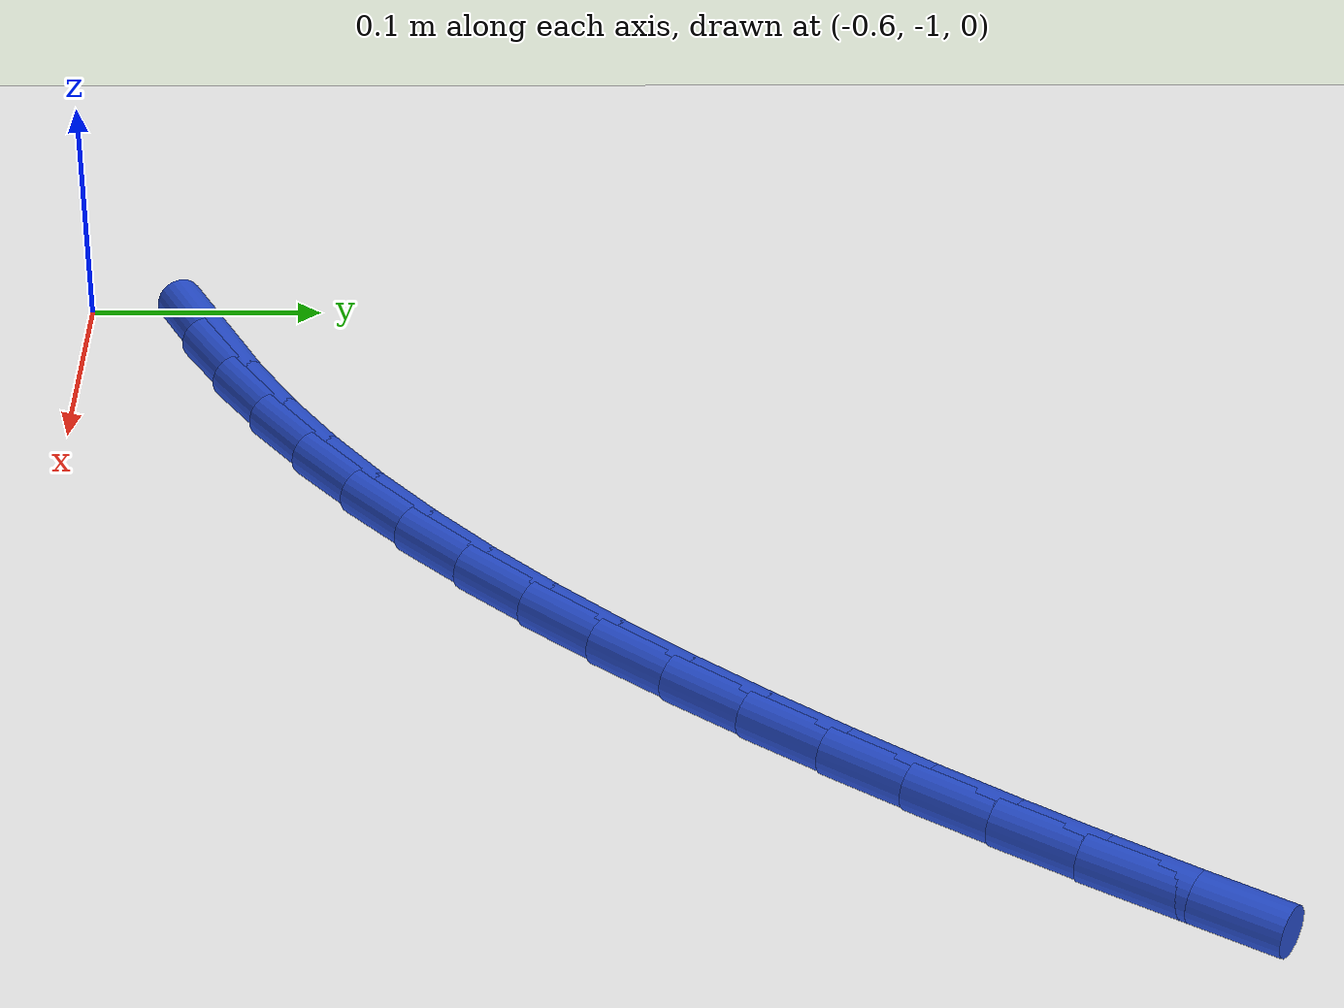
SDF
<sdf version="1.6">
 <world name="default">
  <model name="ground_plane">
   <static>1</static>
   <link name="link">
    <collision name="collision">
     <geometry><plane><normal>0 0 1</normal><size>100 100</size></plane></geometry>
     <surface><friction><ode><mu>100</mu><mu2>50</mu2></ode></friction></surface>
    </collision>
    <visual name="visual">
     <cast_shadows>0</cast_shadows>
     <geometry><plane><normal>0 0 1</normal><size>100 100</size></plane></geometry>
     <material>
      <script><uri>file://media/materials/scripts/gazebo.material</uri><name>Gazebo/WhiteGlow</name></script>
     </material>
    </visual>
   </link>
  </model>
  <model name="line">
   <link name="link_158">
    <pose>-0.558548146287911 -0.9432031679114411 0.01 0 1.57 0.45713544437583525</pose>
    <collision name="collision">
     <geometry><cylinder><radius>0.01</radius><length>0.08</length></cylinder></geometry>
    </collision>
    <visual name="visual">
     <material>
      <script><name>Gazebo/Blue</name><uri>file://media/materials/scripts/gazebo.material</uri></script>
     </material>
     <geometry><cylinder><radius>0.01</radius><length>0.08</length></cylinder></geometry>
    </visual>
   </link>
   <link name="link_159">
    <pose>-0.5271845417817222 -0.9277758468387778 0.01 0 1.57 0.5205325935558743</pose>
    <collision name="collision">
     <geometry><cylinder><radius>0.01</radius><length>0.08</length></cylinder></geometry>
    </collision>
    <visual name="visual">
     <material>
      <script><name>Gazebo/Blue</name><uri>file://media/materials/scripts/gazebo.material</uri></script>
     </material>
     <geometry><cylinder><radius>0.01</radius><length>0.08</length></cylinder></geometry>
    </visual>
   </link>
   <link name="link_160">
    <pose>-0.49684931563408613 -0.910385594855489 0.01 0 1.57 0.5807648153576838</pose>
    <collision name="collision">
     <geometry><cylinder><radius>0.01</radius><length>0.08</length></cylinder></geometry>
    </collision>
    <visual name="visual">
     <material>
      <script><name>Gazebo/Blue</name><uri>file://media/materials/scripts/gazebo.material</uri></script>
     </material>
     <geometry><cylinder><radius>0.01</radius><length>0.08</length></cylinder></geometry>
    </visual>
   </link>
   <link name="link_161">
    <pose>-0.4675215333265776 -0.8911388826727018 0.01 0 1.57 0.6363831360634495</pose>
    <collision name="collision">
     <geometry><cylinder><radius>0.01</radius><length>0.08</length></cylinder></geometry>
    </collision>
    <visual name="visual">
     <material>
      <script><name>Gazebo/Blue</name><uri>file://media/materials/scripts/gazebo.material</uri></script>
     </material>
     <geometry><cylinder><radius>0.01</radius><length>0.08</length></cylinder></geometry>
    </visual>
   </link>
   <link name="link_162">
    <pose>-0.4391634262908447 -0.870184026995264 0.01 0 1.57 0.687366770671507</pose>
    <collision name="collision">
     <geometry><cylinder><radius>0.01</radius><length>0.08</length></cylinder></geometry>
    </collision>
    <visual name="visual">
     <material>
      <script><name>Gazebo/Blue</name><uri>file://media/materials/scripts/gazebo.material</uri></script>
     </material>
     <geometry><cylinder><radius>0.01</radius><length>0.08</length></cylinder></geometry>
    </visual>
   </link>
   <link name="link_163">
    <pose>-0.41173722595853524 -0.8476693445280236 0.01 0 1.57 0.7337999334420165</pose>
    <collision name="collision">
     <geometry><cylinder><radius>0.01</radius><length>0.08</length></cylinder></geometry>
    </collision>
    <visual name="visual">
     <material>
      <script><name>Gazebo/Blue</name><uri>file://media/materials/scripts/gazebo.material</uri></script>
     </material>
     <geometry><cylinder><radius>0.01</radius><length>0.08</length></cylinder></geometry>
    </visual>
   </link>
   <link name="link_164">
    <pose>-0.38520516376129693 -0.8237431519758284 0.01 0 1.57 0.7758377361763357</pose>
    <collision name="collision">
     <geometry><cylinder><radius>0.01</radius><length>0.08</length></cylinder></geometry>
    </collision>
    <visual name="visual">
     <material>
      <script><name>Gazebo/Blue</name><uri>file://media/materials/scripts/gazebo.material</uri></script>
     </material>
     <geometry><cylinder><radius>0.01</radius><length>0.08</length></cylinder></geometry>
    </visual>
   </link>
   <link name="link_165">
    <pose>-0.3595294711307776 -0.7985537660435261 0.01 0 1.57 0.8136770315296015</pose>
    <collision name="collision">
     <geometry><cylinder><radius>0.01</radius><length>0.08</length></cylinder></geometry>
    </collision>
    <visual name="visual">
     <material>
      <script><name>Gazebo/Blue</name><uri>file://media/materials/scripts/gazebo.material</uri></script>
     </material>
     <geometry><cylinder><radius>0.01</radius><length>0.08</length></cylinder></geometry>
    </visual>
   </link>
   <link name="link_166">
    <pose>-0.3346723794986258 -0.772249503435966 0.01 0 1.57 0.8475331681621776</pose>
    <collision name="collision">
     <geometry><cylinder><radius>0.01</radius><length>0.08</length></cylinder></geometry>
    </collision>
    <visual name="visual">
     <material>
      <script><name>Gazebo/Blue</name><uri>file://media/materials/scripts/gazebo.material</uri></script>
     </material>
     <geometry><cylinder><radius>0.01</radius><length>0.08</length></cylinder></geometry>
    </visual>
   </link>
   <link name="link_167">
    <pose>-0.3105961202964882 -0.7449786808579941 0.01 0 1.57 0.8776224132535263</pose>
    <collision name="collision">
     <geometry><cylinder><radius>0.01</radius><length>0.08</length></cylinder></geometry>
    </collision>
    <visual name="visual">
     <material>
      <script><name>Gazebo/Blue</name><uri>file://media/materials/scripts/gazebo.material</uri></script>
     </material>
     <geometry><cylinder><radius>0.01</radius><length>0.08</length></cylinder></geometry>
    </visual>
   </link>
   <link name="link_168">
    <pose>-0.2872629249560133 -0.7168896150144595 0.01 0 1.57 0.9041491739680263</pose>
    <collision name="collision">
     <geometry><cylinder><radius>0.01</radius><length>0.08</length></cylinder></geometry>
    </collision>
    <visual name="visual">
     <material>
      <script><name>Gazebo/Blue</name><uri>file://media/materials/scripts/gazebo.material</uri></script>
     </material>
     <geometry><cylinder><radius>0.01</radius><length>0.08</length></cylinder></geometry>
    </visual>
   </link>
   <link name="link_169">
    <pose>-0.2646350249088486 -0.6881306226102096 0.01 0 1.57 0.9272969310370238</pose>
    <collision name="collision">
     <geometry><cylinder><radius>0.01</radius><length>0.08</length></cylinder></geometry>
    </collision>
    <visual name="visual">
     <material>
      <script><name>Gazebo/Blue</name><uri>file://media/materials/scripts/gazebo.material</uri></script>
     </material>
     <geometry><cylinder><radius>0.01</radius><length>0.08</length></cylinder></geometry>
    </visual>
   </link>
   <link name="link_170">
    <pose>-0.24267465158664236 -0.6588500203500928 0.01 0 1.57 0.9472218110243285</pose>
    <collision name="collision">
     <geometry><cylinder><radius>0.01</radius><length>0.08</length></cylinder></geometry>
    </collision>
    <visual name="visual">
     <material>
      <script><name>Gazebo/Blue</name><uri>file://media/materials/scripts/gazebo.material</uri></script>
     </material>
     <geometry><cylinder><radius>0.01</radius><length>0.08</length></cylinder></geometry>
    </visual>
   </link>
   <link name="link_171">
    <pose>-0.2213440364210421 -0.6291961249389566 0.01 0 1.57 0.9641668723889686</pose>
    <collision name="collision">
     <geometry><cylinder><radius>0.01</radius><length>0.08</length></cylinder></geometry>
    </collision>
    <visual name="visual">
     <material>
      <script><name>Gazebo/Blue</name><uri>file://media/materials/scripts/gazebo.material</uri></script>
     </material>
     <geometry><cylinder><radius>0.01</radius><length>0.08</length></cylinder></geometry>
    </visual>
   </link>
   <link name="link_172">
    <pose>-0.20060784129866166 -0.599313161770442 0.01 0 1.57 0.9809821103513715</pose>
    <collision name="collision">
     <geometry><cylinder><radius>0.01</radius><length>0.08</length></cylinder></geometry>
    </collision>
    <visual name="visual">
     <material>
      <script><name>Gazebo/Blue</name><uri>file://media/materials/scripts/gazebo.material</uri></script>
     </material>
     <geometry><cylinder><radius>0.01</radius><length>0.08</length></cylinder></geometry>
    </visual>
   </link>
   <link name="link_173">
    <pose>-0.18048718430068839 -0.5692503205905782 0.01 0 1.57 1.0004949458281907</pose>
    <collision name="collision">
     <geometry><cylinder><radius>0.01</radius><length>0.08</length></cylinder></geometry>
    </collision>
    <visual name="visual">
     <material>
      <script><name>Gazebo/Blue</name><uri>file://media/materials/scripts/gazebo.material</uri></script>
     </material>
     <geometry><cylinder><radius>0.01</radius><length>0.08</length></cylinder></geometry>
    </visual>
   </link>
  </model>
 </world>
</sdf>
